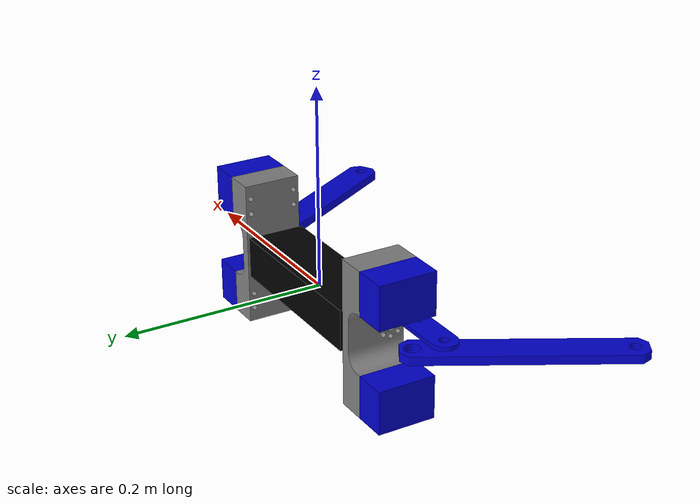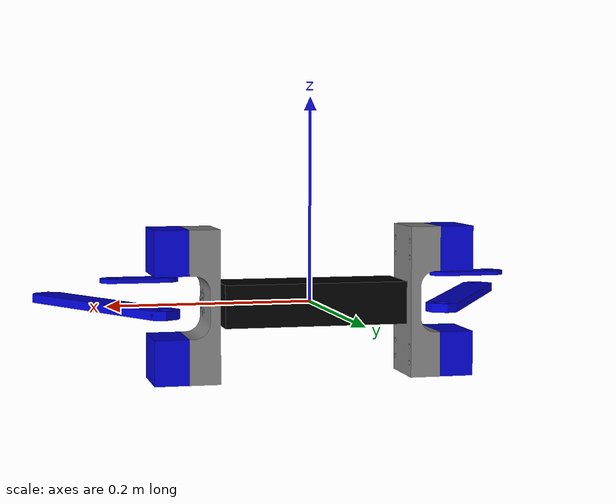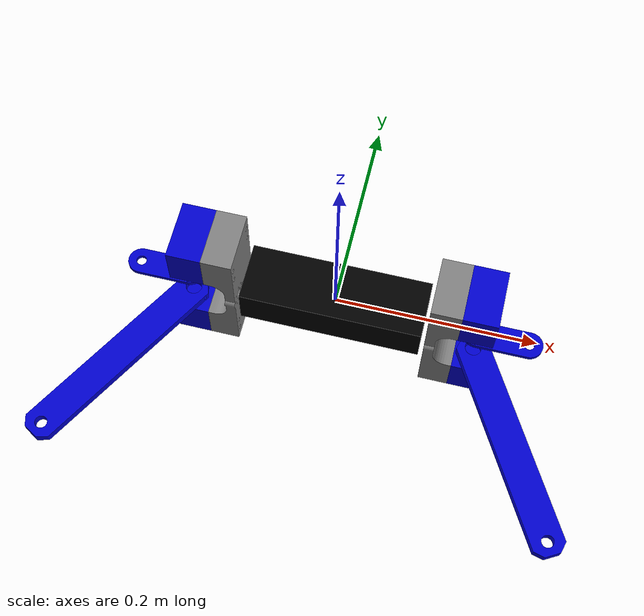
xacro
<robot name="dual_arm_robot" xmlns:xacro="http://ros.org/wiki/xacro">
  <!-- Include macros -->
  <xacro:include
    filename="$(find spacediver_ros2_control)/description/urdf/macros/inertial_macros.xacro" />
  <xacro:include
    filename="$(find spacediver_ros2_control)/description/urdf/macros/properties.xacro" />
  <xacro:include
    filename="$(find spacediver_ros2_control)/description/urdf/macros/materials.xacro" />

  <!-- Select if the robot is going to be used in gazebo -->
  <!-- This is set in spacediver.launch.py -->
  <xacro:arg name="use_gazebo" default="true" />

  <!-- robot shape and phisics -->
  <!-- Base Link -->
  <xacro:include
    filename="$(find spacediver_ros2_control)/description/urdf/parts/spacediver_base.xacro" />

  <!-- Left Arm -->
  <xacro:include
    filename="$(find spacediver_ros2_control)/description/urdf/parts/spacediver_left_arm.xacro" />
  <xacro:left_arm base_name="base_link">
    <origin xyz="0 0 0" rpy="0 0 0" />
  </xacro:left_arm>

  <!-- Right Arm -->
  <xacro:include
    filename="$(find spacediver_ros2_control)/description/urdf/parts/spacediver_right_arm.xacro" />
  <xacro:right_arm base_name="base_link">
    <origin xyz="0 0 0" rpy="0 0 0" />
  </xacro:right_arm>

  <!-- ros2 control plugin -->
  <xacro:include
    filename="$(find spacediver_ros2_control)/description/ros2_control/spacediver_ros2_control.xacro" />

</robot>

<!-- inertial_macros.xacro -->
<robot xmlns:xacro="http://www.ros.org/wiki/xacro" >

    <!-- Specify some standard inertial calculations https://en.wikipedia.org/wiki/List_of_moments_of_inertia -->
    <!-- These make use of xacro's mathematical functionality -->
    <!-- copied from https://github.com/joshnewans/articubot_one/blob/main/description/inertial_macros.xacro -->

    <xacro:macro name="inertial_sphere" params="mass radius *origin">
        <inertial>
            <xacro:insert_block name="origin"/>
            <mass value="${mass}" />
            <inertia ixx="${(2/5) * mass * (radius*radius)}" ixy="0.0" ixz="0.0"
                    iyy="${(2/5) * mass * (radius*radius)}" iyz="0.0"
                    izz="${(2/5) * mass * (radius*radius)}" />
        </inertial>
    </xacro:macro>

    <xacro:macro name="inertial_box" params="mass x y z *origin">
        <!-- x, y, z are distance from box center to surface -->
        <inertial>
            <xacro:insert_block name="origin"/>
            <mass value="${mass}" />
            <inertia ixx="${(1/12) * mass * (y*y+z*z)}" ixy="0.0" ixz="0.0"
                    iyy="${(1/12) * mass * (x*x+z*z)}" iyz="0.0"
                    izz="${(1/12) * mass * (x*x+y*y)}" />
        </inertial>
    </xacro:macro>

    <xacro:macro name="inertial_cylinder" params="mass length radius *origin">
        <inertial>
            <xacro:insert_block name="origin"/>
            <mass value="${mass}" />
            <inertia ixx="${(1/12) * mass * (3*radius*radius + length*length)}" ixy="0.0" ixz="0.0"
                    iyy="${(1/12) * mass * (3*radius*radius + length*length)}" iyz="0.0"
                    izz="${(1/2) * mass * (radius*radius)}" />
        </inertial>
    </xacro:macro>

</robot>

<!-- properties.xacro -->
<robot xmlns:xacro="http://ros.org/wiki/xacro">

  <xacro:property name="PI" value="${math.pi}"/>
  <xacro:property name="ROT" value="${PI/6}"/>
  <xacro:property name="RPM" value="30"/>

  <!-- LINK NAMES -->
  <xacro:property name="BASE_LINK_NAME" value="base_link"/>
  <xacro:property name="L_SHOULDER_LINK_NAME" value="left_shoulder_link"/>
  <xacro:property name="R_SHOULDER_LINK_NAME" value="right_shoulder_link"/>

  <xacro:property name="L_TOP_DYNAMIXEL_LINK_NAME" value="left_dynamixel_top"/>
  <xacro:property name="R_TOP_DYNAMIXEL_LINK_NAME" value="right_dynamixel_top"/>
  <xacro:property name="L_BOT_DYNAMIXEL_LINK_NAME" value="left_dynamixel_bottom"/>
  <xacro:property name="R_BOT_DYNAMIXEL_LINK_NAME" value="right_dynamixel_bottom"/>

  <xacro:property name="L_MISUMILN_LINK_NAME" value="left_misumi_ln"/>
  <xacro:property name="R_MISUMILN_LINK_NAME" value="right_misumi_ln"/>

  <xacro:property name="L_DRIVING_LINK_NAME" value="left_driving_link"/>
  <xacro:property name="R_DRIVING_LINK_NAME" value="right_driving_link"/>

  <xacro:property name="L_DRIVEN_LINK_NAME" value="left_driven_link"/>
  <xacro:property name="R_DRIVEN_LINK_NAME" value="right_driven_link"/>

  <xacro:property name="L_MISUMIFT_LINK_NAME" value="left_misumi_ft"/>
  <xacro:property name="R_MISUMIFT_LINK_NAME" value="right_misumi_ft"/>

  <!-- JOINT NAMES -->
  <xacro:property name="BASE_TO_LEFTSHOULDER_JOINT_NAME" value="base_to_leftshoulder_joint"/>
  <xacro:property name="BASE_TO_RIGHTSHOULDER_JOINT_NAME" value="base_to_rightshoulder_joint"/>

  <xacro:property name="LEFTSHOULDER_TO_LEFTDYNAMIXELTOP_JOINT_NAME" value="leftshoulder_to_leftdynamixeltop_joint"/>
  <xacro:property name="RIGHTSHOULDER_TO_RIGHTDYNAMIXELTOP_JOINT_NAME" value="rightshoulder_to_rightdynamixeltop_joint"/>

  <xacro:property name="LEFTSHOULDER_TO_LEFTDYNAMIXELBOT_JOINT_NAME" value="leftshoulder_to_leftdynamixelbottom_joint"/>
  <xacro:property name="RIGHTSHOULDER_TO_RIGHTDYNAMIXELBOT_JOINT_NAME" value="rightshoulder_to_rightdynamixelbottom_joint"/>

  <xacro:property name="LEFT_DYNAMIXELBOT_TO_LEFTMISUMILN_JOINT_NAME" value="leftdynamixelbottom_to_leftmisumiln_joint"/>
  <xacro:property name="RIGHT_DYNAMIXELBOT_TO_RIGHTMISUMILN_JOINT_NAME" value="rightdynamixelbottom_to_rightmisumiln_joint"/>

  <xacro:property name="LEFTDYNAMIXELTOP_TO_LEFTDRIVING_JOINT_NAME" value="leftdynamixeltop_to_leftdriving_joint"/>
  <xacro:property name="RIGHTDYNAMIXELTOP_TO_RIGHTDRIVING_JOINT_NAME" value="rightdynamixeltop_to_rightdriving_joint"/>

  <xacro:property name="LEFTDRIVING_TO_LEFTDRIVEN_JOINT_NAME" value="leftdriving_to_leftdriven_joint"/>
  <xacro:property name="RIGHTDRIVING_TO_RIGHTDRIVEN_JOINT_NAME" value="rightdriving_to_rightdriven_joint"/>

  <xacro:property name="LEFTDRIVEN_TO_LEFTMISUMIFT_JOINT_NAME" value="leftdriven_to_leftmisumift_joint"/>
  <xacro:property name="RIGHTDRIVEN_TO_RIGHTMISUMIFT_JOINT_NAME" value="rightdriven_to_rightmisumift_joint"/>

  <xacro:property name="LEFTMISUMILN_TO_LEFTMISUMIFT_JOINT_NAME" value="leftmisumiln_to_leftmisumift_joint"/>
  <xacro:property name="RIGHTMISUMILN_TO_RIGHTMISUMIFT_JOINT_NAME" value="rightmisumiln_to_rightmisumift_joint"/>

  <!-- BASE -->
  <xacro:property name="BASE_X" value="0.18"/>
  <xacro:property name="BASE_Y" value="0.0585"/>
  <xacro:property name="BASE_Z" value="0.0415"/>
  <xacro:property name="BASE_MASS" value="50"/>
  <xacro:property name="BASE_INERTIA_Z" value="0.13526810"/>
  <!-- JOINT -->
  <xacro:property name="BASE_DYNAMIXEL_LOWER" value="-${PI}"/>
  <xacro:property name="BASE_DYNAMIXEL_UPPER" value=" ${PI}"/>
  <xacro:property name="BASE_DYNAMIXEL_VELOCITY" value="${(RPM) * 2*(PI)/60}"/>
  <xacro:property name="BASE_DYNAMIXEL_EFFORT" value="1"/>

  <!-- SHOULDER PLATE -->
  <xacro:property name="SHOULDER_X" value="0.03"/>
  <xacro:property name="SHOULDER_Y" value="0.0585"/>
  <xacro:property name="SHOULDER_Y_ADD" value="0.00275"/>
  <xacro:property name="SHOULDER_Z" value="0.148"/>
  <xacro:property name="SHOULDER_JOINTA_X" value="${0.04475}"/>
  <xacro:property name="SHOULDER_JOINTA_Y" value="${0.005}"/>
  <xacro:property name="SHOULDER_JOINTA_Z" value="${SHOULDER_Z/2}"/>
  <xacro:property name="SHOULDER_POS_X" value="${BASE_X/2 + 0.0045}"/>
  <xacro:property name="SHOULDER_POS_Y" value="${SHOULDER_Y/2}"/>
  <xacro:property name="SHOULDER_POS_Z" value="${-SHOULDER_Z/2}"/>
  <!-- LEFT -->
  <xacro:property name="L_SHOULDER_ROT_Z" value="${-PI/2}"/>
  <!-- RIGHT -->
  <xacro:property name="R_SHOULDER_ROT_X" value="${PI}"/>
  <xacro:property name="R_SHOULDER_ROT_Y" value="${0}"/>
  <xacro:property name="R_SHOULDER_ROT_Z" value="${-PI/2}"/>

  <!-- DYNAMIXEL -->
  <xacro:property name="DYNAMIXEL_X" value="0.0335"/>
  <xacro:property name="DYNAMIXEL_Y" value="0.0585"/>
  <xacro:property name="DYNAMIXEL_Z" value="0.044"/>
  <xacro:property name="DYNAMIXEL_POS_X" value="${SHOULDER_POS_X + SHOULDER_X + DYNAMIXEL_X/2}"/>
  <xacro:property name="DYNAMIXEL_POS_Y" value="${SHOULDER_POS_Y - SHOULDER_Y/2}"/>
  <xacro:property name="DYNAMIXEL_TOP_POS_Z" value="${SHOULDER_POS_Z + SHOULDER_Z - DYNAMIXEL_Z/2}"/>
  <xacro:property name="DYNAMIXEL_BOT_POS_Z" value="${SHOULDER_POS_Z + DYNAMIXEL_Z/2}"/>
  <!-- JOINT -->
  <xacro:property name="DYNAMIXEL_JOINTB_X" value="0"/>
  <xacro:property name="DYNAMIXEL_JOINTB_Y" value="${DYNAMIXEL_Y - 0.04475}"/>
  <xacro:property name="TOP_DYNAMIXEL_LOWER" value="-${PI}"/>
  <xacro:property name="TOP_DYNAMIXEL_UPPER" value=" ${PI}"/>
  <xacro:property name="TOP_DYNAMIXEL_VELOCITY" value="${(RPM) * 2*(PI)/60}"/>
  <xacro:property name="TOP_DYNAMIXEL_EFFORT" value="1"/>
  <xacro:property name="BOT_DYNAMIXEL_LOWER" value="-${PI}"/>
  <xacro:property name="BOT_DYNAMIXEL_UPPER" value=" ${PI}"/>
  <xacro:property name="BOT_DYNAMIXEL_VELOCITY" value="${(RPM) * 2*(PI)/60}"/>
  <xacro:property name="BOT_DYNAMIXEL_EFFORT" value="1"/>

  <!-- MIUSMI LN (LOWER LINK) -->
  <xacro:property name="MISUMILN_X" value="0.032"/>
  <xacro:property name="MISUMILN_Y" value="0.225"/>
  <xacro:property name="MISUMILN_Z" value="0.009"/>

  <xacro:property name="MISUMILN_JOINTA_X" value="0.016"/>
  <xacro:property name="MISUMILN_JOINTA_Y" value="0.012"/>
  <xacro:property name="MISUMILN_JOINTA_Z" value="${MISUMILN_Z/2}"/>
  <!-- LEFT -->
  <xacro:property name="L_MISUMILN_ROT_Z" value="${-PI/2+ROT}"/>
  <xacro:property name="L_MISUMILN_POS_X" value="${DYNAMIXEL_POS_X + math.cos(ROT)*(-MISUMILN_JOINTA_X) - math.sin(ROT)*(MISUMILN_JOINTA_Y)}"/>
  <xacro:property name="L_MISUMILN_POS_Y" value="${DYNAMIXEL_POS_Y - DYNAMIXEL_JOINTB_Y + math.sin(ROT)*(-MISUMILN_JOINTA_X) + math.cos(ROT)*(MISUMILN_JOINTA_Y)}"/>
  <!-- RIGHT -->
  <xacro:property name="R_MISUMILN_ROT_Z" value="${-PI/2-ROT}"/>
  <xacro:property name="R_MISUMILN_POS_X" value="${-DYNAMIXEL_POS_X + math.cos(-ROT)*(-MISUMILN_JOINTA_X) - math.sin(-ROT)*(MISUMILN_JOINTA_Y)}"/>
  <xacro:property name="R_MISUMILN_POS_Y" value="${DYNAMIXEL_POS_Y - DYNAMIXEL_JOINTB_Y + math.sin(-ROT)*(-MISUMILN_JOINTA_X) + math.cos(-ROT)*(MISUMILN_JOINTA_Y)}"/>

  <xacro:property name="MISUMILN_POS_Z" value="${DYNAMIXEL_BOT_POS_Z + DYNAMIXEL_Z/2 + 0.0145}"/>

  <!-- DRIVING LINK -->
  <xacro:property name="DRIVING_X" value="0.076"/>
  <xacro:property name="DRIVING_Y" value="0.026"/>
  <xacro:property name="DRIVING_Z" value="0.004"/>
  <xacro:property name="DRIVING_JOINTA_X" value="0.013"/>
  <xacro:property name="DRIVING_JOINTA_Y" value="0.013"/>
  <xacro:property name="DRIVING_JOINTA_Z" value="${DRIVING_Z/2}"/>
  <!-- LEFT -->
  <xacro:property name="L_DRIVING_ROT_Z" value="${0}"/>
  <xacro:property name="L_DRIVING_POS_X" value="${DYNAMIXEL_POS_X - DRIVING_JOINTA_X}"/>
  <xacro:property name="L_DRIVING_POS_Y" value="${DYNAMIXEL_POS_Y - DYNAMIXEL_JOINTB_Y - DRIVING_JOINTA_Y}"/>
  <!-- RIGHT -->
  <xacro:property name="R_DRIVING_ROT_Z" value="${PI}"/>
  <xacro:property name="R_DRIVING_POS_X" value="${-DYNAMIXEL_POS_X + DRIVING_JOINTA_X}"/>
  <xacro:property name="R_DRIVING_POS_Y" value="${DYNAMIXEL_POS_Y - DYNAMIXEL_JOINTB_Y + DRIVING_JOINTA_Y}"/>

  <xacro:property name="DRIVING_POS_Z" value="${DYNAMIXEL_TOP_POS_Z - DYNAMIXEL_Z/2 - DRIVING_Z - 0.0045}"/>
  <xacro:property name="DRIVING_JOINTB_X" value="0.063"/>
  <xacro:property name="DRIVING_JOINTB_Y" value="0.013"/>

  <!-- DRIVEN LINK -->
  <xacro:property name="DRIVEN_X" value="0.026"/>
  <xacro:property name="DRIVEN_Y" value="0.226"/>
  <xacro:property name="DRIVEN_Z" value="0.004"/>
  <xacro:property name="DRIVEN_JOINTA_X" value="0.013"/>
  <xacro:property name="DRIVEN_JOINTA_Y" value="0.013"/>
  <xacro:property name="DRIVEN_JOINTA_Z" value="${DRIVEN_Z/2}"/>
  <!-- LEFT -->
  <xacro:property name="L_DRIVEN_ROT_Z" value="${-PI/2+ROT}"/>
  <xacro:property name="L_DRIVEN_POS_X" value="${L_DRIVING_POS_X + DRIVING_JOINTB_X + math.cos(ROT)*(-DRIVEN_JOINTA_X) - math.sin(ROT)*(DRIVEN_JOINTA_Y)}"/>
  <xacro:property name="L_DRIVEN_POS_Y" value="${L_DRIVING_POS_Y + DRIVING_JOINTB_Y + math.sin(ROT)*(-DRIVEN_JOINTA_X) + math.cos(ROT)*(DRIVEN_JOINTA_Y)}"/>
  <!-- RIGHT -->
  <xacro:property name="R_DRIVEN_ROT_Z" value="${-PI/2-ROT}"/>
  <xacro:property name="R_DRIVEN_POS_X" value="${R_DRIVING_POS_X - DRIVING_JOINTB_X + math.cos(-ROT)*(-DRIVEN_JOINTA_X) - math.sin(-ROT)*(DRIVEN_JOINTA_Y)}"/>
  <xacro:property name="R_DRIVEN_POS_Y" value="${R_DRIVING_POS_Y - DRIVING_JOINTB_Y + math.sin(-ROT)*(-DRIVEN_JOINTA_X) + math.cos(-ROT)*(DRIVEN_JOINTA_Y)}"/>

  <xacro:property name="DRIVEN_POS_Z" value="${DRIVING_POS_Z - DRIVING_Z - 0.01}"/>
  <xacro:property name="DRIVEN_JOINTB_X" value="0.013"/>
  <xacro:property name="DRIVEN_JOINTB_Y" value="0.213"/>

  <!-- MISUMI FT (final link) -->
  <xacro:property name="MISUMIFT_X" value="0.268"/>
  <xacro:property name="MISUMIFT_Y" value="0.018"/>
  <xacro:property name="MISUMIFT_Z" value="0.009"/>
  <xacro:property name="MISUMIFT_JOINTA_X" value="0.009"/>
  <xacro:property name="MISUMIFT_JOINTA_Y" value="0.009"/>
  <xacro:property name="MISUMIFT_JOINTA_Z" value="${MISUMIFT_Z/2}"/>
  <xacro:property name="MISUMIFT_JOINTB_X" value="0.059"/>
  <xacro:property name="MISUMIFT_JOINTB_Y" value="0.009"/>
  <xacro:property name="MISUMIFT_JOINTB_Z" value="${MISUMIFT_Z/2}"/>
  <!-- LEFT -->
  <xacro:property name="L_MISUMIFT_ROT_Z" value="${PI}"/>
  <xacro:property name="L_MISUMIFT_POS_X" value="${L_DRIVEN_POS_X + math.cos(ROT)*(DRIVEN_JOINTB_X) - math.sin(ROT)*(-DRIVEN_JOINTB_Y) + MISUMIFT_JOINTA_X}"/>
  <xacro:property name="L_MISUMIFT_POS_Y" value="${L_DRIVEN_POS_Y + math.sin(ROT)*(DRIVEN_JOINTB_X) + math.cos(ROT)*(-DRIVEN_JOINTB_Y) + MISUMIFT_JOINTA_Y}"/>
  <!-- RIGHT -->
  <xacro:property name="R_MISUMIFT_ROT_Z" value="${0}"/>
  <xacro:property name="R_MISUMIFT_POS_X" value="${R_DRIVEN_POS_X + math.cos(-ROT)*(DRIVEN_JOINTB_X) - math.sin(-ROT)*(-DRIVEN_JOINTB_Y) - MISUMIFT_JOINTA_X}"/>
  <xacro:property name="R_MISUMIFT_POS_Y" value="${R_DRIVEN_POS_Y + math.sin(-ROT)*(DRIVEN_JOINTB_X) + math.cos(-ROT)*(-DRIVEN_JOINTB_Y) - MISUMIFT_JOINTA_Y}"/>

  <xacro:property name="MISUMIFT_POS_Z" value="${DRIVEN_POS_Z - MISUMIFT_Z - 0.005}"/>

  <!-- SHOULDER PLATE -->
  <xacro:property name="SHOULDER_PLATE_X" value="0.03"/>
  <xacro:property name="SHOULDER_PLATE_Y" value="0.0585"/>
  <xacro:property name="SHOULDER_PLATE_Y_ADD" value="0.00275"/>
  <xacro:property name="SHOULDER_PLATE_Z" value="0.148"/>
  <xacro:property name="SHOULDER_PLATE_JOINTA_X" value="${0.04475}"/>
  <xacro:property name="SHOULDER_PLATE_JOINTA_Y" value="${0.005}"/>
  <xacro:property name="SHOULDER_PLATE_JOINTA_Z" value="${SHOULDER_PLATE_Z/2}"/>
  <xacro:property name="SHOULDER_PLATE_POS_X" value="${BASE_X/2 + 0.0045}"/>
  <xacro:property name="SHOULDER_PLATE_POS_Y" value="${SHOULDER_PLATE_Y/2}"/>
  <xacro:property name="SHOULDER_PLATE_POS_Z" value="${-SHOULDER_PLATE_Z/2}"/>
  <!-- LEFT -->
  <xacro:property name="L_SHOULDER_PLATE_ROT_Z" value="${-PI/2}"/>
  <!-- RIGHT -->
  <xacro:property name="R_SHOULDER_PLATE_ROT_X" value="${PI}"/>
  <xacro:property name="R_SHOULDER_PLATE_ROT_Y" value="${0}"/>
  <xacro:property name="R_SHOULDER_PLATE_ROT_Z" value="${-PI/2}"/>

  <!-- DYNAMIXEL -->
  <xacro:property name="DYNAMIXEL_X" value="0.0335"/>
  <xacro:property name="DYNAMIXEL_Y" value="0.0585"/>
  <xacro:property name="DYNAMIXEL_Z" value="0.044"/>
  <xacro:property name="DYNAMIXEL_JOINTB_X" value="0"/>
  <xacro:property name="DYNAMIXEL_JOINTB_Y" value="${DYNAMIXEL_Y - 0.04475}"/>
  <xacro:property name="DYNAMIXEL_POS_X" value="${SHOULDER_PLATE_POS_X + SHOULDER_PLATE_X + DYNAMIXEL_X/2}"/>
  <xacro:property name="DYNAMIXEL_POS_Y" value="${SHOULDER_PLATE_POS_Y - SHOULDER_PLATE_Y/2}"/>
  <xacro:property name="DYNAMIXEL_TOP_POS_Z" value="${SHOULDER_PLATE_POS_Z + SHOULDER_PLATE_Z - DYNAMIXEL_Z/2}"/>
  <xacro:property name="DYNAMIXEL_BOT_POS_Z" value="${SHOULDER_PLATE_POS_Z + DYNAMIXEL_Z/2}"/>

  <!-- MIUSMI LN (LOWER LINK) -->
  <xacro:property name="MISUMILN_X" value="0.032"/>
  <xacro:property name="MISUMILN_Y" value="0.225"/>
  <xacro:property name="MISUMILN_Z" value="0.009"/>

  <xacro:property name="MISUMILN_JOINTA_X" value="0.016"/>
  <xacro:property name="MISUMILN_JOINTA_Y" value="0.012"/>
  <xacro:property name="MISUMILN_JOINTA_Z" value="${MISUMILN_Z/2}"/>
  <!-- LEFT -->
  <xacro:property name="L_MISUMILN_ROT_Z" value="${-PI/2+ROT}"/>
  <xacro:property name="L_MISUMILN_POS_X" value="${DYNAMIXEL_POS_X + math.cos(ROT)*(-MISUMILN_JOINTA_X) - math.sin(ROT)*(MISUMILN_JOINTA_Y)}"/>
  <xacro:property name="L_MISUMILN_POS_Y" value="${DYNAMIXEL_POS_Y - DYNAMIXEL_JOINTB_Y + math.sin(ROT)*(-MISUMILN_JOINTA_X) + math.cos(ROT)*(MISUMILN_JOINTA_Y)}"/>
  <!-- RIGHT -->
  <xacro:property name="R_MISUMILN_ROT_Z" value="${-PI/2-ROT}"/>
  <xacro:property name="R_MISUMILN_POS_X" value="${-DYNAMIXEL_POS_X + math.cos(-ROT)*(-MISUMILN_JOINTA_X) - math.sin(-ROT)*(MISUMILN_JOINTA_Y)}"/>
  <xacro:property name="R_MISUMILN_POS_Y" value="${DYNAMIXEL_POS_Y - DYNAMIXEL_JOINTB_Y + math.sin(-ROT)*(-MISUMILN_JOINTA_X) + math.cos(-ROT)*(MISUMILN_JOINTA_Y)}"/>

  <xacro:property name="MISUMILN_POS_Z" value="${DYNAMIXEL_BOT_POS_Z + DYNAMIXEL_Z/2 + 0.0145}"/>

  <!-- DRIVING LINK -->
  <xacro:property name="DRIVING_X" value="0.076"/>
  <xacro:property name="DRIVING_Y" value="0.026"/>
  <xacro:property name="DRIVING_Z" value="0.004"/>
  <xacro:property name="DRIVING_JOINTA_X" value="0.013"/>
  <xacro:property name="DRIVING_JOINTA_Y" value="0.013"/>
  <xacro:property name="DRIVING_JOINTA_Z" value="${DRIVING_Z/2}"/>
  <!-- LEFT -->
  <xacro:property name="L_DRIVING_ROT_Z" value="${0}"/>
  <xacro:property name="L_DRIVING_POS_X" value="${DYNAMIXEL_POS_X - DRIVING_JOINTA_X}"/>
  <xacro:property name="L_DRIVING_POS_Y" value="${DYNAMIXEL_POS_Y - DYNAMIXEL_JOINTB_Y - DRIVING_JOINTA_Y}"/>
  <!-- RIGHT -->
  <xacro:property name="R_DRIVING_ROT_Z" value="${PI}"/>
  <xacro:property name="R_DRIVING_POS_X" value="${-DYNAMIXEL_POS_X + DRIVING_JOINTA_X}"/>
  <xacro:property name="R_DRIVING_POS_Y" value="${DYNAMIXEL_POS_Y - DYNAMIXEL_JOINTB_Y + DRIVING_JOINTA_Y}"/>

  <xacro:property name="DRIVING_POS_Z" value="${DYNAMIXEL_TOP_POS_Z - DYNAMIXEL_Z/2 - DRIVING_Z - 0.0045}"/>
  <xacro:property name="DRIVING_JOINTB_X" value="0.063"/>
  <xacro:property name="DRIVING_JOINTB_Y" value="0.013"/>

  <!-- DRIVEN LINK -->
  <xacro:property name="DRIVEN_X" value="0.026"/>
  <xacro:property name="DRIVEN_Y" value="0.226"/>
  <xacro:property name="DRIVEN_Z" value="0.004"/>
  <xacro:property name="DRIVEN_JOINTA_X" value="0.013"/>
  <xacro:property name="DRIVEN_JOINTA_Y" value="0.013"/>
  <xacro:property name="DRIVEN_JOINTA_Z" value="${DRIVEN_Z/2}"/>
  <!-- LEFT -->
  <xacro:property name="L_DRIVEN_ROT_Z" value="${-PI/2+ROT}"/>
  <xacro:property name="L_DRIVEN_POS_X" value="${L_DRIVING_POS_X + DRIVING_JOINTB_X + math.cos(ROT)*(-DRIVEN_JOINTA_X) - math.sin(ROT)*(DRIVEN_JOINTA_Y)}"/>
  <xacro:property name="L_DRIVEN_POS_Y" value="${L_DRIVING_POS_Y + DRIVING_JOINTB_Y + math.sin(ROT)*(-DRIVEN_JOINTA_X) + math.cos(ROT)*(DRIVEN_JOINTA_Y)}"/>
  <!-- RIGHT -->
  <xacro:property name="R_DRIVEN_ROT_Z" value="${-PI/2-ROT}"/>
  <xacro:property name="R_DRIVEN_POS_X" value="${R_DRIVING_POS_X - DRIVING_JOINTB_X + math.cos(-ROT)*(-DRIVEN_JOINTA_X) - math.sin(-ROT)*(DRIVEN_JOINTA_Y)}"/>
  <xacro:property name="R_DRIVEN_POS_Y" value="${R_DRIVING_POS_Y - DRIVING_JOINTB_Y + math.sin(-ROT)*(-DRIVEN_JOINTA_X) + math.cos(-ROT)*(DRIVEN_JOINTA_Y)}"/>

  <xacro:property name="DRIVEN_POS_Z" value="${DRIVING_POS_Z - DRIVING_Z - 0.01}"/>
  <xacro:property name="DRIVEN_JOINTB_X" value="0.013"/>
  <xacro:property name="DRIVEN_JOINTB_Y" value="0.213"/>

  <!-- MISUMI FT (final link) -->
  <xacro:property name="MISUMIFT_X" value="0.268"/>
  <xacro:property name="MISUMIFT_Y" value="0.018"/>
  <xacro:property name="MISUMIFT_Z" value="0.009"/>
  <xacro:property name="MISUMIFT_JOINTA_X" value="0.009"/>
  <xacro:property name="MISUMIFT_JOINTA_Y" value="0.009"/>
  <xacro:property name="MISUMIFT_JOINTA_Z" value="${MISUMIFT_Z/2}"/>
  <xacro:property name="MISUMIFT_JOINTB_X" value="0.059"/>
  <xacro:property name="MISUMIFT_JOINTB_Y" value="0.009"/>
  <xacro:property name="MISUMIFT_JOINTB_Z" value="${MISUMIFT_Z/2}"/>
  <!-- LEFT -->
  <xacro:property name="L_MISUMIFT_ROT_Z" value="${PI}"/>
  <xacro:property name="L_MISUMIFT_POS_X" value="${L_DRIVEN_POS_X + math.cos(ROT)*(DRIVEN_JOINTB_X) - math.sin(ROT)*(-DRIVEN_JOINTB_Y) + MISUMIFT_JOINTA_X}"/>
  <xacro:property name="L_MISUMIFT_POS_Y" value="${L_DRIVEN_POS_Y + math.sin(ROT)*(DRIVEN_JOINTB_X) + math.cos(ROT)*(-DRIVEN_JOINTB_Y) + MISUMIFT_JOINTA_Y}"/>
  <!-- RIGHT -->
  <xacro:property name="R_MISUMIFT_ROT_Z" value="${0}"/>
  <xacro:property name="R_MISUMIFT_POS_X" value="${R_DRIVEN_POS_X + math.cos(-ROT)*(DRIVEN_JOINTB_X) - math.sin(-ROT)*(-DRIVEN_JOINTB_Y) - MISUMIFT_JOINTA_X}"/>
  <xacro:property name="R_MISUMIFT_POS_Y" value="${R_DRIVEN_POS_Y + math.sin(-ROT)*(DRIVEN_JOINTB_X) + math.cos(-ROT)*(-DRIVEN_JOINTB_Y) - MISUMIFT_JOINTA_Y}"/>

  <xacro:property name="MISUMIFT_POS_Z" value="${DRIVEN_POS_Z - MISUMIFT_Z - 0.005}"/>

  <xacro:property name="ACTIVE_JOINT_LA_LOWER" value="-${PI}"/>
  <xacro:property name="ACTIVE_JOINT_LA_UPPER" value=" ${PI}"/>
  <xacro:property name="ACTIVE_JOINT_LA_EFFORT" value="20"/>
  <xacro:property name="ACTIVE_JOINT_LA_VELOCITY" value="${PI}"/>

  <xacro:property name="LINK_1_X" value="0.1"/>
  <xacro:property name="LINK_1_Y" value="0.1"/>
  <xacro:property name="LINK_1_Z" value="0.1"/>
  <xacro:property name="LINK_1_MASS" value="1.0"/>
  <xacro:property name="LINK_1_INERTIA_Z" value="0.00255150"/>

  <xacro:property name="ACTIVE_JOINT_LB_LOWER" value="-${PI}"/>
  <xacro:property name="ACTIVE_JOINT_LB_UPPER" value=" ${PI}"/>
  <xacro:property name="ACTIVE_JOINT_LB_EFFORT" value="20"/>
  <xacro:property name="ACTIVE_JOINT_LB_VELOCITY" value="${PI}"/>

  <xacro:property name="LINK_2_X" value="0.5"/>
  <xacro:property name="LINK_2_Y" value="0.1"/>
  <xacro:property name="LINK_2_Z" value="0.1"/>
  <xacro:property name="LINK_2_MASS" value="1.0"/>
  <xacro:property name="LINK_2_INERTIA_Z" value="0.00118507"/>

  <xacro:property name="ACTIVE_JOINT_LC_LOWER" value="-${PI}"/>
  <xacro:property name="ACTIVE_JOINT_LC_UPPER" value=" ${PI}"/>
  <xacro:property name="ACTIVE_JOINT_LC_EFFORT" value="20"/>
  <xacro:property name="ACTIVE_JOINT_LC_VELOCITY" value="${PI}"/>

  <xacro:property name="LINK_3_X" value="0.5"/>
  <xacro:property name="LINK_3_Y" value="0.1"/>
  <xacro:property name="LINK_3_Z" value="0.1"/>
  <xacro:property name="LINK_3_MASS" value="1.0"/>
  <xacro:property name="LINK_3_INERTIA_Z" value="0.00128210"/>

  <xacro:property name="ACTIVE_JOINT_RA_LOWER" value="-${PI}"/>
  <xacro:property name="ACTIVE_JOINT_RA_UPPER" value=" ${PI}"/>
  <xacro:property name="ACTIVE_JOINT_RA_EFFORT" value="20"/>
  <xacro:property name="ACTIVE_JOINT_RA_VELOCITY" value="${PI}"/>

  <xacro:property name="LINK_4_X" value="0.1"/>
  <xacro:property name="LINK_4_Y" value="0.1"/>
  <xacro:property name="LINK_4_Z" value="0.1"/>
  <xacro:property name="LINK_4_MASS" value="1.0"/>
  <xacro:property name="LINK_4_INERTIA_Z" value="0.00128210"/>

  <xacro:property name="ACTIVE_JOINT_RB_LOWER" value="-${PI}"/>
  <xacro:property name="ACTIVE_JOINT_RB_UPPER" value=" ${PI}"/>
  <xacro:property name="ACTIVE_JOINT_RB_EFFORT" value="20"/>
  <xacro:property name="ACTIVE_JOINT_RB_VELOCITY" value="${PI}"/>

  <xacro:property name="LINK_5_X" value="0.25"/>
  <xacro:property name="LINK_5_Y" value="0.1"/>
  <xacro:property name="LINK_5_Z" value="0.1"/>
  <xacro:property name="LINK_5_MASS" value="0.5"/>
  <xacro:property name="LINK_5_INERTIA_Z" value="0.00128210"/>

  <xacro:property name="ACTIVE_JOINT_RC_LOWER" value="-${PI}"/>
  <xacro:property name="ACTIVE_JOINT_RC_UPPER" value=" ${PI}"/>
  <xacro:property name="ACTIVE_JOINT_RC_EFFORT" value="20"/>
  <xacro:property name="ACTIVE_JOINT_RC_VELOCITY" value="${PI}"/>

  <xacro:property name="LINK_6_X" value="0.1"/>
  <xacro:property name="LINK_6_Y" value="0.1"/>
  <xacro:property name="LINK_6_Z" value="0.1"/>
  <xacro:property name="LINK_6_MASS" value="0.5"/>
  <xacro:property name="LINK_6_INERTIA_Z" value="0.00128210"/>

  <xacro:property name="TARGET_X" value="0.5"/>
  <xacro:property name="TARGET_Y" value="0.5"/>
  <xacro:property name="TARGET_Z" value="0.5"/>
  <xacro:property name="TARGET_MASS" value="5.0"/>

</robot>

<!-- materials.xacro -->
<!-- import xacro reffering here https://gbiggs.github.io/rosjp_urdf_tutorial_text/manipulator_urdf.html -->
<robot xmlns:xacro="http://ros.org/wiki/xacro">

  <material name="black">
      <color rgba="0.0 0.0 0.0 1.0"/>
  </material>

  <material name="dark_grey">
    <color rgba="0.3 0.3 0.3 1.0"/>
  </material>

  <material name="light_black">
    <color rgba="0.4 0.4 0.4 1.0"/>
  </material>

  <material name="blue">
    <color rgba="0.0 0.0 0.8 1.0"/>
  </material>

  <material name="green">
    <color rgba="0.0 0.8 0.0 1.0"/>
  </material>

  <material name="grey">
    <color rgba="0.5 0.5 0.5 1.0"/>
  </material>

  <material name="light_grey">
    <color rgba="0.7 0.7 0.7 1.0"/>
  </material>

  <material name="orange">
    <color rgba="${255/255} ${108/255} ${10/255} 1.0"/>
  </material>

  <material name="brown">
    <color rgba="${222/255} ${207/255} ${195/255} 1.0"/>
  </material>

  <material name="red">
    <color rgba="0.8 0.0 0.0 1.0"/>
  </material>

  <material name="white">
    <color rgba="1.0 1.0 1.0 1.0"/>
  </material>

</robot>

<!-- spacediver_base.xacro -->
<!-- import xacro reffering here https://gbiggs.github.io/rosjp_urdf_tutorial_text/manipulator_urdf.html -->
<robot xmlns:xacro="http://ros.org/wiki/xacro">
  <link name="${BASE_LINK_NAME}">
    <visual>
      <origin xyz="0 0 0" rpy="0 0 0"/>
      <geometry>
        <box size="${BASE_X} ${BASE_Y} ${BASE_Z}"/>
      </geometry>
      <material name="black"/>
    </visual>
    <collision>
      <origin xyz="0 0 0" rpy="0 0 0"/>
      <geometry>
        <box size="${BASE_X} ${BASE_Y} ${BASE_Z}"/>
      </geometry>
    </collision>

    <xacro:if value="$(arg use_gazebo)">
      <xacro:inertial_box mass="${BASE_MASS}" x="${BASE_X/2}" y="${BASE_Y/2}" z="${BASE_Z/2}">
        <origin xyz="0 0 0" rpy="0 0 0"/>
      </xacro:inertial_box>
    </xacro:if>

  </link>
</robot>

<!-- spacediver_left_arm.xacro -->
<!-- import xacro reffering here
https://gbiggs.github.io/rosjp_urdf_tutorial_text/manipulator_urdf.html -->
<robot xmlns:xacro="http://ros.org/wiki/xacro">
  <xacro:macro name="left_arm" params="base_name *origin">

    <!-- BASE TO SHOULDER -->
    <joint name="${BASE_TO_LEFTSHOULDER_JOINT_NAME}" type="revolute">
      <parent link="${BASE_LINK_NAME}" />
      <child link="${L_SHOULDER_LINK_NAME}" />
      <origin
        xyz="
        ${SHOULDER_POS_X}
        ${-(SHOULDER_JOINTA_X-SHOULDER_Y/2)}
        ${0}
      "
        rpy="0 0 0" />
      <axis xyz="1 0 0" />
      <limit lower="${BASE_DYNAMIXEL_LOWER}" upper="${BASE_DYNAMIXEL_UPPER}"
        effort="${BASE_DYNAMIXEL_EFFORT}" velocity="${BASE_DYNAMIXEL_VELOCITY}" />
    </joint>

    <!-- SHOULDER -->
    <link name="${L_SHOULDER_LINK_NAME}">
      <visual>
        <origin
          xyz="
          ${0}
          ${SHOULDER_JOINTA_X}
          ${-SHOULDER_Z/2}
        "
          rpy="0 0 ${L_SHOULDER_ROT_Z}" />
        <geometry>
          <mesh
            filename="package://spacediver_ros2_control/description/gazebo/models/meshes/shoulder_plate.STL" />
        </geometry>
        <material name="grey" />
      </visual>
      <collision>
        <origin
          xyz="
          ${0}
          ${SHOULDER_JOINTA_X}
          ${-SHOULDER_Z/2}
        "
          rpy="0 0 ${L_SHOULDER_ROT_Z}" />
        <geometry>
          <mesh
            filename="package://spacediver_ros2_control/description/gazebo/models/meshes/shoulder_plate.STL" />
        </geometry>
      </collision>
      <xacro:inertial_box mass="${LINK_1_MASS}" x="${LINK_1_X/2}" y="${LINK_1_Y/2}"
        z="${LINK_1_Z/2}">
        <origin xyz="0 0 ${LINK_1_Z/2}" rpy="0 0 0" />
      </xacro:inertial_box>
    </link>

    <!-- SHOULDER TO BOTTOM DYNAMIXEL -->
    <joint name="${LEFTSHOULDER_TO_LEFTDYNAMIXELBOT_JOINT_NAME}" type="fixed">
      <parent link="${L_SHOULDER_LINK_NAME}" />
      <child link="${L_BOT_DYNAMIXEL_LINK_NAME}" />
      <origin
        xyz="
        ${SHOULDER_X + DYNAMIXEL_X/2}
        ${SHOULDER_JOINTA_X - DYNAMIXEL_Y/2}
        ${-SHOULDER_Z/2 + DYNAMIXEL_Z/2}
      "
        rpy="0 0 0" />
      <axis xyz="0 0 1" />
    </joint>

    <!-- BOTTOM DYNAMIXEL -->
    <link name="${L_BOT_DYNAMIXEL_LINK_NAME}">
      <visual>
        <origin xyz="0 0 0" rpy="0 0 0" />
        <geometry>
          <box size="${DYNAMIXEL_X} ${DYNAMIXEL_Y} ${DYNAMIXEL_Z}" />
        </geometry>
        <material name="blue" />
      </visual>
      <collision>
        <origin xyz="0 0 0" rpy="0 0 0" />
        <geometry>
          <box size="${DYNAMIXEL_X} ${DYNAMIXEL_Y} ${DYNAMIXEL_Z}" />
        </geometry>
      </collision>
      <xacro:inertial_box mass="${LINK_1_MASS}" x="${LINK_1_X/2}" y="${LINK_1_Y/2}"
        z="${LINK_1_Z/2}">
        <origin xyz="0 0 ${LINK_1_Z/2}" rpy="0 0 0" />
      </xacro:inertial_box>
    </link>

    <!-- BOTTOM DYNAMIXEL TO MISUMI LN -->
    <joint name="${LEFT_DYNAMIXELBOT_TO_LEFTMISUMILN_JOINT_NAME}" type="revolute">
      <parent link="${L_BOT_DYNAMIXEL_LINK_NAME}" />
      <child link="${L_MISUMILN_LINK_NAME}" />
      <origin
        xyz="
        ${0}
        ${DYNAMIXEL_JOINTB_Y-DYNAMIXEL_Y/2}
        ${MISUMILN_POS_Z-DYNAMIXEL_BOT_POS_Z}"
        rpy="0 0 ${L_MISUMILN_ROT_Z}" />
      <axis xyz="0 0 1" />
      <limit lower="${BOT_DYNAMIXEL_LOWER}" upper="${BOT_DYNAMIXEL_UPPER}"
        effort="${BOT_DYNAMIXEL_EFFORT}" velocity="${BOT_DYNAMIXEL_VELOCITY}" />
    </joint>

    <!-- MISUMI LN -->
    <link name="${L_MISUMILN_LINK_NAME}">
      <visual>
        <origin
          xyz="${-MISUMILN_JOINTA_Y} ${-MISUMILN_JOINTA_X} 0"
          rpy="0 0 0" />
        <geometry>
          <mesh
            filename="package://spacediver_ros2_control/description/gazebo/models/meshes/Link_MISUMI_LNMS16-10-200.STL" />
        </geometry>
        <material name="blue" />
      </visual>
      <collision>
        <origin
          xyz="${-MISUMILN_JOINTA_Y} ${-MISUMILN_JOINTA_X} 0"
          rpy="0 0 0" />
        <geometry>
          <mesh
            filename="package://spacediver_ros2_control/description/gazebo/models/meshes/Link_MISUMI_LNMS16-10-200.STL" />
        </geometry>
      </collision>
      <xacro:inertial_box mass="${LINK_1_MASS}" x="${LINK_1_X/2}" y="${LINK_1_Y/2}"
        z="${LINK_1_Z/2}">
        <origin xyz="0 0 ${LINK_1_Z/2}" rpy="0 0 0" />
      </xacro:inertial_box>
    </link>

    <!-- SHOULDER TO TOP DYNAMIXEL -->
    <joint name="${LEFTSHOULDER_TO_LEFTDYNAMIXELTOP_JOINT_NAME}" type="fixed">
      <parent link="${L_SHOULDER_LINK_NAME}" />
      <child link="${L_TOP_DYNAMIXEL_LINK_NAME}" />
      <origin
        xyz="
          ${SHOULDER_X + DYNAMIXEL_X/2}
          ${SHOULDER_JOINTA_X - DYNAMIXEL_Y/2}
          ${SHOULDER_Z/2 - DYNAMIXEL_Z/2}
        "
        rpy="0 0 0" />
      <axis xyz="0 0 1" />
    </joint>

    <!-- TOP DYNAMIXEL -->
    <link name="${L_TOP_DYNAMIXEL_LINK_NAME}">
      <visual>
        <origin xyz="0 0 0" rpy="0 0 0" />
        <geometry>
          <box size="${DYNAMIXEL_X} ${DYNAMIXEL_Y} ${DYNAMIXEL_Z}" />
        </geometry>
        <material name="blue" />
      </visual>
      <collision>
        <origin xyz="0 0 0" rpy="0 0 0" />
        <geometry>
          <box size="${DYNAMIXEL_X} ${DYNAMIXEL_Y} ${DYNAMIXEL_Z}" />
        </geometry>
      </collision>
      <xacro:inertial_box mass="${LINK_1_MASS}" x="${LINK_1_X/2}" y="${LINK_1_Y/2}"
        z="${LINK_1_Z/2}">
        <origin xyz="0 0 ${LINK_1_Z/2}" rpy="0 0 0" />
      </xacro:inertial_box>
    </link>

    <!-- TOP DYNAMIXEL TO DRIVING LINK -->
    <joint name="${LEFTDYNAMIXELTOP_TO_LEFTDRIVING_JOINT_NAME}" type="revolute">
      <parent link="${L_TOP_DYNAMIXEL_LINK_NAME}" />
      <child link="${L_DRIVING_LINK_NAME}" />
      <origin
        xyz="
        ${0}
        ${DYNAMIXEL_JOINTB_Y-DYNAMIXEL_Y/2}
        ${DRIVING_POS_Z - DYNAMIXEL_TOP_POS_Z}"
        rpy="0 0 ${0}" />
      <axis xyz="0 0 1" />
      <limit lower="${TOP_DYNAMIXEL_LOWER}" upper="${TOP_DYNAMIXEL_UPPER}"
        effort="${TOP_DYNAMIXEL_EFFORT}" velocity="${TOP_DYNAMIXEL_VELOCITY}" />
    </joint>

    <!-- DRIVING LINK -->
    <link name="${L_DRIVING_LINK_NAME}">
      <visual>
        <origin
          xyz="
          ${-DRIVING_JOINTA_X}
          ${-DRIVING_JOINTA_Y}
          ${0}
        "
          rpy="0 0 0" />
        <geometry>
          <mesh
            filename="package://spacediver_ros2_control/description/gazebo/models/meshes/upper_arm_driving_link.STL" />
        </geometry>
        <material name="blue" />
      </visual>
      <collision>
        <origin
          xyz="
          ${-DRIVING_JOINTA_X}
          ${-DRIVING_JOINTA_Y}
          ${0}
        "
          rpy="0 0 0" />
        <geometry>
          <mesh
            filename="package://spacediver_ros2_control/description/gazebo/models/meshes/upper_arm_driving_link.STL" />
        </geometry>
      </collision>
      <xacro:inertial_box mass="${LINK_1_MASS}" x="${LINK_1_X/2}" y="${LINK_1_Y/2}"
        z="${LINK_1_Z/2}">
        <origin xyz="0 0 ${LINK_1_Z/2}" rpy="0 0 0" />
      </xacro:inertial_box>
    </link>

  </xacro:macro>

</robot>

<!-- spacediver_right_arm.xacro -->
<!-- import xacro reffering here
https://gbiggs.github.io/rosjp_urdf_tutorial_text/manipulator_urdf.html -->
<robot xmlns:xacro="http://ros.org/wiki/xacro">

  <xacro:macro name="right_arm" params="base_name *origin">

    <!-- BASE TO SHOULDER -->
    <joint name="${BASE_TO_RIGHTSHOULDER_JOINT_NAME}" type="revolute">
      <parent link="${BASE_LINK_NAME}" />
      <child link="${R_SHOULDER_LINK_NAME}" />
      <origin
        xyz="
        ${-SHOULDER_POS_X}
        ${-(SHOULDER_JOINTA_X-SHOULDER_Y/2)}
        ${0}
      "
        rpy="0 0 ${PI}" />
      <axis xyz="1 0 0" />
      <limit lower="${BASE_DYNAMIXEL_LOWER}" upper="${BASE_DYNAMIXEL_UPPER}"
        effort="${BASE_DYNAMIXEL_EFFORT}" velocity="${BASE_DYNAMIXEL_VELOCITY}" />
    </joint>

    <!-- SHOULDER -->
    <link name="${R_SHOULDER_LINK_NAME}">
      <visual>
        <origin
          xyz="
          ${0}
          ${-SHOULDER_JOINTA_X}
          ${SHOULDER_Z/2}
        "
          rpy="${PI} 0 ${-L_SHOULDER_ROT_Z}" />
        <geometry>
          <mesh
            filename="package://spacediver_ros2_control/description/gazebo/models/meshes/shoulder_plate.STL" />
        </geometry>
        <material name="grey" />
      </visual>
      <collision>
        <origin
          xyz="
          ${0}
          ${-SHOULDER_JOINTA_X}
          ${SHOULDER_Z/2}
        "
          rpy="${PI} 0 ${-L_SHOULDER_ROT_Z}" />
        <geometry>
          <mesh
            filename="package://spacediver_ros2_control/description/gazebo/models/meshes/shoulder_plate.STL" />
        </geometry>
      </collision>
      <xacro:inertial_box mass="${LINK_1_MASS}" x="${LINK_1_X/2}" y="${LINK_1_Y/2}"
        z="${LINK_1_Z/2}">
        <origin xyz="0 0 ${LINK_1_Z/2}" rpy="0 0 0" />
      </xacro:inertial_box>
    </link>

    <!-- SHOULDER TO BOTTOM DYNAMIXEL -->
    <joint name="${RIGHTSHOULDER_TO_RIGHTDYNAMIXELBOT_JOINT_NAME}" type="fixed">
      <parent link="${R_SHOULDER_LINK_NAME}" />
      <child link="${R_BOT_DYNAMIXEL_LINK_NAME}" />
      <origin
        xyz="
        ${SHOULDER_X + DYNAMIXEL_X/2}
        ${DYNAMIXEL_Y/2 - SHOULDER_JOINTA_X}
        ${-SHOULDER_Z/2 + DYNAMIXEL_Z/2}
      "
        rpy="0 0 0" />
      <axis xyz="0 0 1" />
    </joint>

    <!-- BOTTOM DYNAMIXEL -->
    <link name="${R_BOT_DYNAMIXEL_LINK_NAME}">
      <visual>
        <origin xyz="0 0 0" rpy="0 0 0" />
        <geometry>
          <box size="${DYNAMIXEL_X} ${DYNAMIXEL_Y} ${DYNAMIXEL_Z}" />
        </geometry>
        <material name="blue" />
      </visual>
      <collision>
        <origin xyz="0 0 0" rpy="0 0 0" />
        <geometry>
          <box size="${DYNAMIXEL_X} ${DYNAMIXEL_Y} ${DYNAMIXEL_Z}" />
        </geometry>
      </collision>
      <xacro:inertial_box mass="${LINK_1_MASS}" x="${LINK_1_X/2}" y="${LINK_1_Y/2}"
        z="${LINK_1_Z/2}">
        <origin xyz="0 0 ${LINK_1_Z/2}" rpy="0 0 0" />
      </xacro:inertial_box>
    </link>

    <!-- BOTTOM DYNAMIXEL TO MISUMI LN -->
    <joint name="${RIGHT_DYNAMIXELBOT_TO_RIGHTMISUMILN_JOINT_NAME}" type="revolute">
      <parent link="${R_BOT_DYNAMIXEL_LINK_NAME}" />
      <child link="${R_MISUMILN_LINK_NAME}" />
      <origin
        xyz="
        ${0}
        ${DYNAMIXEL_Y/2 - DYNAMIXEL_JOINTB_Y}
        ${MISUMILN_POS_Z-DYNAMIXEL_BOT_POS_Z}"
        rpy="0 0 ${-L_MISUMILN_ROT_Z}" />
      <axis xyz="0 0 1" />
      <limit lower="${BOT_DYNAMIXEL_LOWER}" upper="${BOT_DYNAMIXEL_UPPER}"
        effort="${BOT_DYNAMIXEL_EFFORT}" velocity="${BOT_DYNAMIXEL_VELOCITY}" />
    </joint>

    <!-- MISUMI LN -->
    <link name="${R_MISUMILN_LINK_NAME}">
      <visual>
        <origin
          xyz="
          ${-MISUMILN_JOINTA_Y}
          ${-MISUMILN_JOINTA_X}
          0
        "
          rpy="0 0 ${0}" />
        <geometry>
          <mesh
            filename="package://spacediver_ros2_control/description/gazebo/models/meshes/Link_MISUMI_LNMS16-10-200.STL" />
        </geometry>
        <material name="blue" />
      </visual>
      <collision>
        <origin
          xyz="
          ${-MISUMILN_JOINTA_Y}
          ${-MISUMILN_JOINTA_X}
          0
        "
          rpy="0 0 ${0}" />
        <geometry>
          <mesh
            filename="package://spacediver_ros2_control/description/gazebo/models/meshes/Link_MISUMI_LNMS16-10-200.STL" />
        </geometry>
      </collision>
      <xacro:inertial_box mass="${LINK_1_MASS}" x="${LINK_1_X/2}" y="${LINK_1_Y/2}"
        z="${LINK_1_Z/2}">
        <origin xyz="0 0 ${LINK_1_Z/2}" rpy="0 0 0" />
      </xacro:inertial_box>
    </link>

    <!-- SHOULDER TO TOP DYNAMIXEL -->
    <joint name="${RIGHTSHOULDER_TO_RIGHTDYNAMIXELTOP_JOINT_NAME}" type="fixed">
      <parent link="${R_SHOULDER_LINK_NAME}" />
      <child link="${R_TOP_DYNAMIXEL_LINK_NAME}" />
      <origin
        xyz="
        ${SHOULDER_X + DYNAMIXEL_X/2}
        ${DYNAMIXEL_Y/2 - SHOULDER_JOINTA_X}
        ${SHOULDER_Z/2 - DYNAMIXEL_Z/2}
      "
        rpy="0 0 0" />
      <axis xyz="0 0 1" />
    </joint>

    <!-- TOP DYNAMIXEL -->
    <link name="${R_TOP_DYNAMIXEL_LINK_NAME}">
      <visual>
        <origin xyz="0 0 0" rpy="0 0 0" />
        <geometry>
          <box size="${DYNAMIXEL_X} ${DYNAMIXEL_Y} ${DYNAMIXEL_Z}" />
        </geometry>
        <material name="blue" />
      </visual>
      <collision>
        <origin xyz="0 0 0" rpy="0 0 0" />
        <geometry>
          <box size="${DYNAMIXEL_X} ${DYNAMIXEL_Y} ${DYNAMIXEL_Z}" />
        </geometry>
      </collision>
      <xacro:inertial_box mass="${LINK_1_MASS}" x="${LINK_1_X/2}" y="${LINK_1_Y/2}"
        z="${LINK_1_Z/2}">
        <origin xyz="0 0 ${LINK_1_Z/2}" rpy="0 0 0" />
      </xacro:inertial_box>
    </link>

    <!-- TOP DYNAMIXEL TO DRIVING LINK -->
    <joint name="${RIGHTDYNAMIXELTOP_TO_RIGHTDRIVING_JOINT_NAME}" type="revolute">
      <parent link="${R_TOP_DYNAMIXEL_LINK_NAME}" />
      <child link="${R_DRIVING_LINK_NAME}" />
      <origin
        xyz="
        ${0}
        ${DYNAMIXEL_Y/2 - DYNAMIXEL_JOINTB_Y}
        ${DRIVING_POS_Z - DYNAMIXEL_TOP_POS_Z}"
        rpy="0 0 ${0}" />
      <axis xyz="0 0 1" />
      <limit lower="${TOP_DYNAMIXEL_LOWER}" upper="${TOP_DYNAMIXEL_UPPER}"
        effort="${TOP_DYNAMIXEL_EFFORT}" velocity="${TOP_DYNAMIXEL_VELOCITY}" />
    </joint>

    <!-- DRIVING LINK -->
    <link name="${R_DRIVING_LINK_NAME}">
      <visual>
        <origin
          xyz="
          ${-DRIVING_JOINTA_X}
          ${-DRIVING_JOINTA_Y}
          ${0}
        "
          rpy="0 0 0" />
        <geometry>
          <mesh
            filename="package://spacediver_ros2_control/description/gazebo/models/meshes/upper_arm_driving_link.STL" />
        </geometry>
        <material name="blue" />
      </visual>
      <collision>
        <origin
          xyz="
          ${-DRIVING_JOINTA_X}
          ${-DRIVING_JOINTA_Y}
          ${0}
        "
          rpy="0 0 0" />
        <geometry>
          <mesh
            filename="package://spacediver_ros2_control/description/gazebo/models/meshes/upper_arm_driving_link.STL" />
        </geometry>
      </collision>
      <xacro:inertial_box mass="${LINK_1_MASS}" x="${LINK_1_X/2}" y="${LINK_1_Y/2}"
        z="${LINK_1_Z/2}">
        <origin xyz="0 0 ${LINK_1_Z/2}" rpy="0 0 0" />
      </xacro:inertial_box>
    </link>

  </xacro:macro>

</robot>
